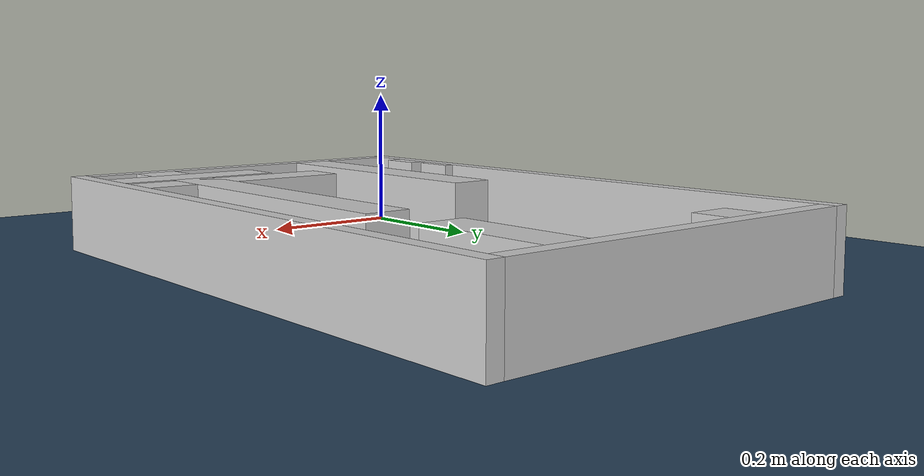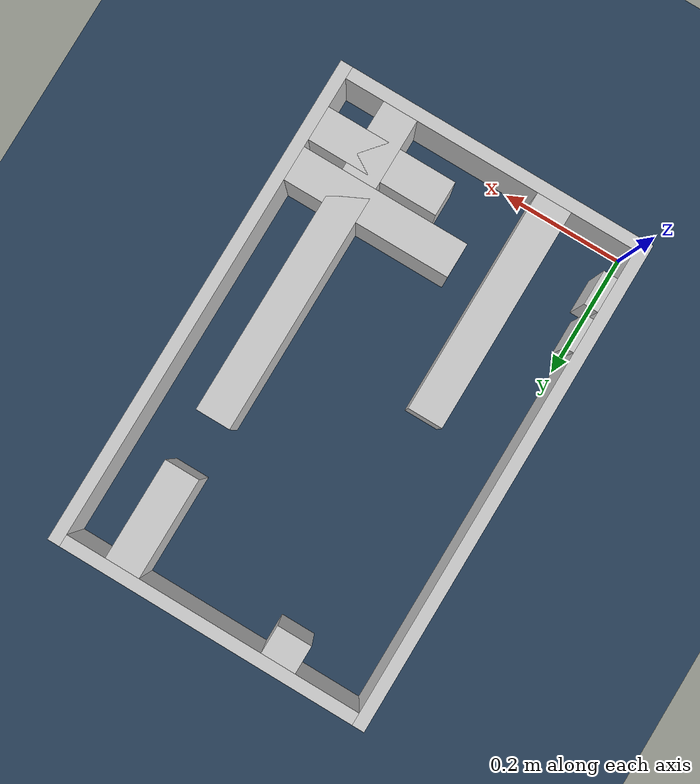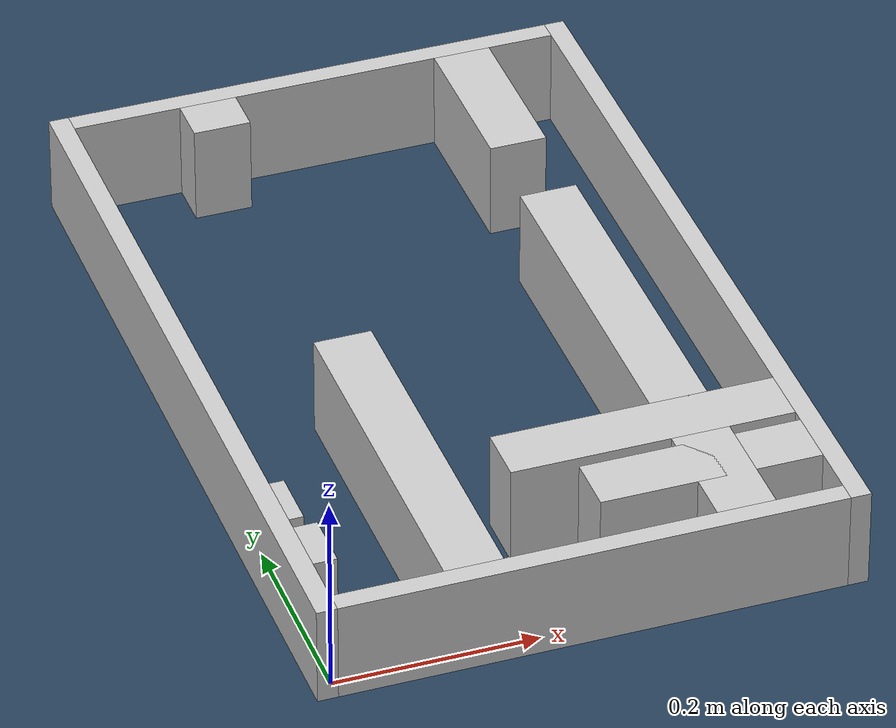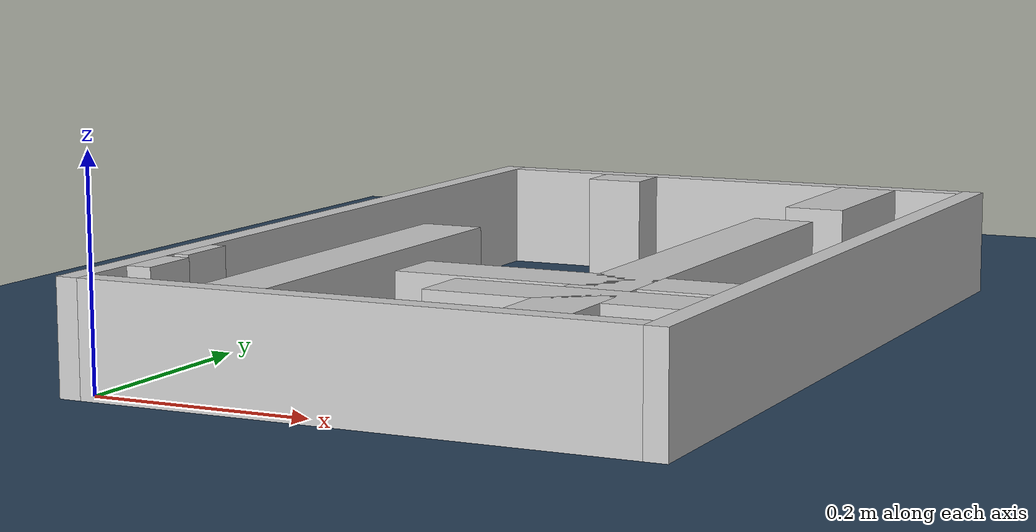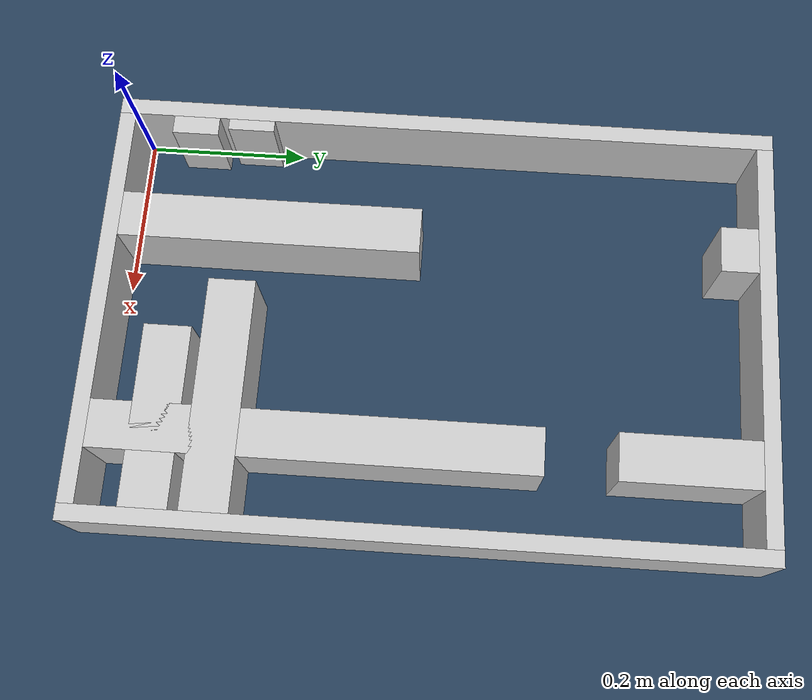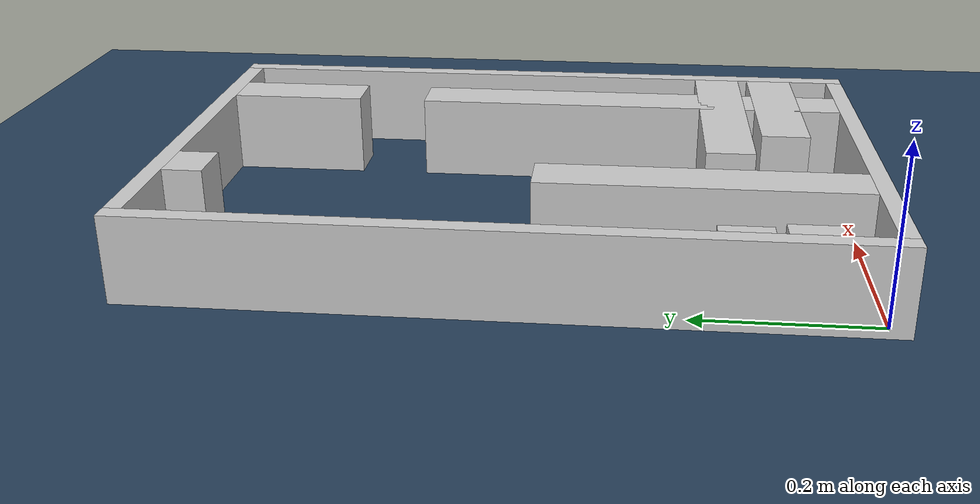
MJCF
<?xml version="1.0" ?>
<mujoco model="generated_real_template">
  <compiler angle="degree"/>
  <option timestep="0.002" integrator="implicitfast" iterations="100" cone="elliptic"/>
  <default>
    <geom density="1"/>
  </default>
  <asset>
    <texture builtin="gradient" height="3072" rgb1="0.3 0.5 0.7" rgb2="0 0 0" type="skybox" width="512"/>
    <texture builtin="checker" height="300" mark="edge" markrgb="0.8 0.8 0.8" name="groundplane" rgb1="0.2 0.3 0.4" rgb2="0.1 0.2 0.3" type="2d" width="300"/>
    <material name="groundplane" reflectance="0.2" texrepeat="5 5" texture="groundplane" texuniform="true"/>
  </asset>
  <worldbody>
    <light dir="0 0 -1" directional="true" pos="0 0 1.5"/>
    <geom name="floor" type="plane" condim="4" friction="0.5 0.005 0.001" material="groundplane" size="0 0 0.05"/>
    <body name="walls">
      <geom name="wall_boundary_left" type="box" condim="4" friction="1.0 0.005 0.0001" rgba="0.8 0.8 0.8 1" pos="-0.010000 0.387500 0.050000" euler="0 0 0.000000" size="0.010000 0.407500 0.050000"/>
      <geom name="wall_boundary_right" type="box" condim="4" friction="1.0 0.005 0.0001" rgba="0.8 0.8 0.8 1" pos="0.500000 0.387500 0.050000" euler="0 0 0.000000" size="0.010000 0.407500 0.050000"/>
      <geom name="wall_boundary_bottom" type="box" condim="4" friction="1.0 0.005 0.0001" rgba="0.8 0.8 0.8 1" pos="0.245000 -0.010000 0.050000" euler="0 0 0.000000" size="0.245000 0.010000 0.050000"/>
      <geom name="wall_boundary_top" type="box" condim="4" friction="1.0 0.005 0.0001" rgba="0.8 0.8 0.8 1" pos="0.245000 0.785000 0.050000" euler="0 0 0.000000" size="0.245000 0.010000 0.050000"/>
      <geom name="wall_inner_1_1" type="box" condim="4" friction="1.0 0.005 0.0001" rgba="0.8 0.8 0.8 1" pos="0.011530 0.077128 0.050000" euler="0 0 0.000000" size="0.011530 0.028500 0.050000"/>
      <geom name="wall_inner_1_2" type="box" condim="4" friction="1.0 0.005 0.0001" rgba="0.8 0.8 0.8 1" pos="0.381957 0.077128 0.050000" euler="0 0 0.000000" size="0.108043 0.028500 0.050000"/>
      <geom name="wall_inner_2_1" type="box" condim="4" friction="1.0 0.005 0.0001" rgba="0.8 0.8 0.8 1" pos="0.135186 0.183279 0.050000" euler="0 0 90.000000" size="0.183279 0.028500 0.050000"/>
      <geom name="wall_inner_2_2" type="box" condim="4" friction="1.0 0.005 0.0001" rgba="0.8 0.8 0.8 1" pos="0.135186 0.752080 0.050000" euler="0 0 90.000000" size="0.022920 0.028500 0.050000"/>
      <geom name="wall_inner_3_1" type="box" condim="4" friction="1.0 0.005 0.0001" rgba="0.8 0.8 0.8 1" pos="0.396553 0.263057 0.050000" euler="0 0 90.000000" size="0.263057 0.028500 0.050000"/>
      <geom name="wall_inner_3_2" type="box" condim="4" friction="1.0 0.005 0.0001" rgba="0.8 0.8 0.8 1" pos="0.396553 0.692550 0.050000" euler="0 0 90.000000" size="0.082450 0.028500 0.050000"/>
      <geom name="wall_inner_4_1" type="box" condim="4" friction="1.0 0.005 0.0001" rgba="0.8 0.8 0.8 1" pos="0.007181 0.146065 0.050000" euler="0 0 0.000000" size="0.007181 0.028500 0.050000"/>
      <geom name="wall_inner_4_2" type="box" condim="4" friction="1.0 0.005 0.0001" rgba="0.8 0.8 0.8 1" pos="0.351195 0.146065 0.050000" euler="0 0 0.000000" size="0.138805 0.028500 0.050000"/>
    </body>
  </worldbody>
</mujoco>
